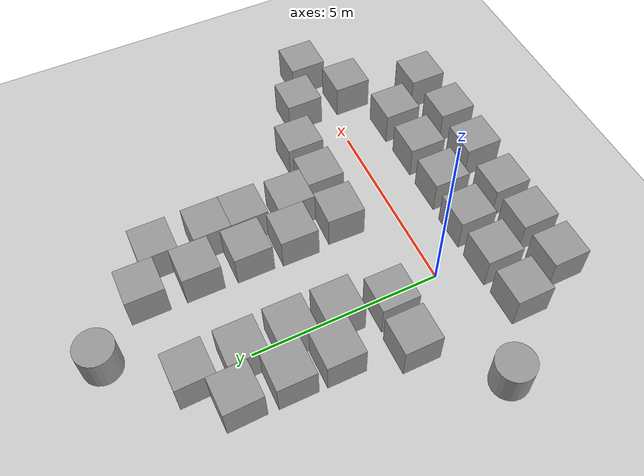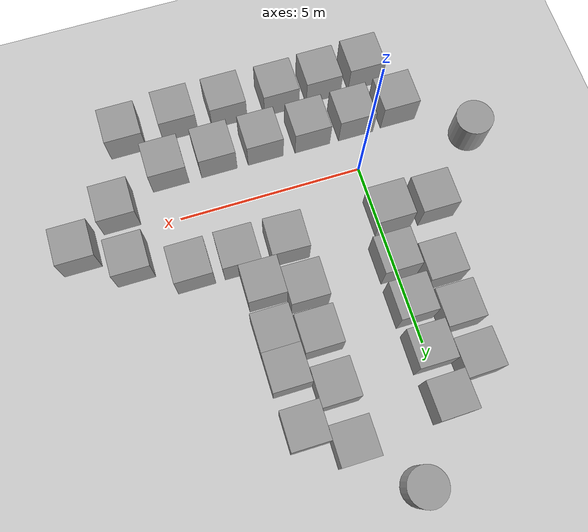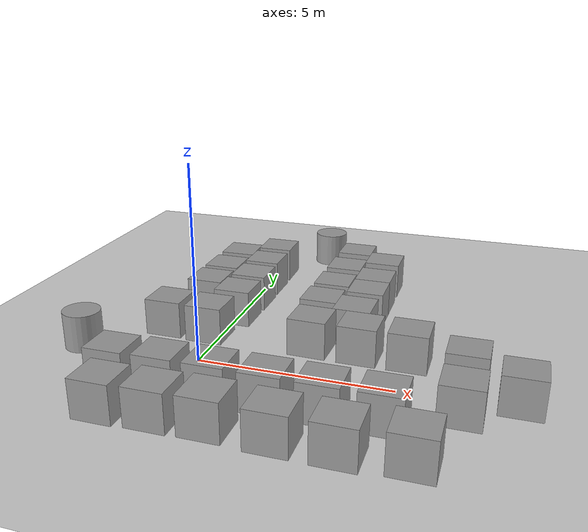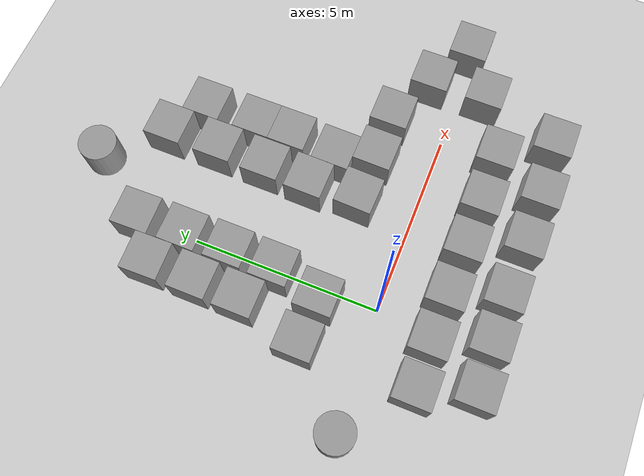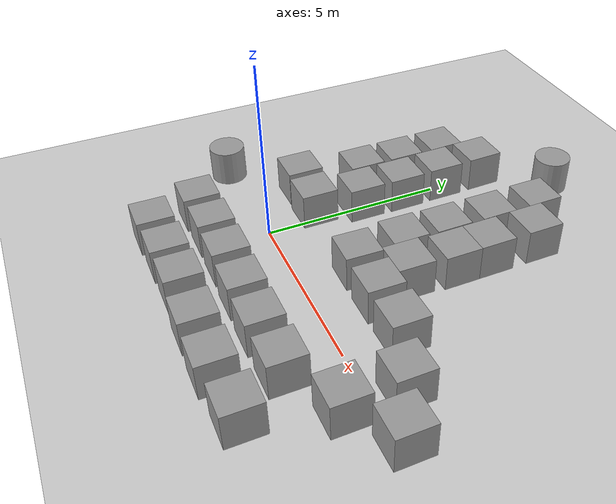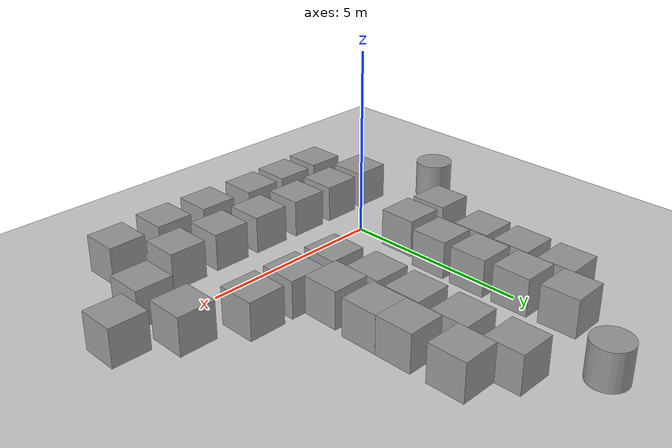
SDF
<sdf version="1.6">
 <world name="default">
  <light name="sun" type="directional">
   <pose>0 0 10 0 -0 0</pose>
   <diffuse>0.8 0.8 0.8 1</diffuse>
   <specular>0.2 0.2 0.2 1</specular>
   <attenuation>
    <range>1000</range>
    <constant>0.9</constant>
    <linear>0.01</linear>
    <quadratic>0.001</quadratic>
   </attenuation>
   <direction>-0.5 0.1 -0.9</direction>
  </light>
  <model name="ground_plane">
   <static>1</static>
   <link name="link">
    <collision name="collision">
     <geometry><plane><normal>0 0 1</normal><size>100 100</size></plane></geometry>
     <surface><friction><ode><mu>100</mu><mu2>50</mu2></ode></friction></surface>
    </collision>
    <visual name="visual">
     <cast_shadows>0</cast_shadows>
     <geometry><plane><normal>0 0 1</normal><size>100 100</size></plane></geometry>
     <material>
      <script><uri>file://media/materials/scripts/gazebo.material</uri><name>Gazebo/Grey</name></script>
     </material>
    </visual>
   </link>
  </model>
  <gravity>0 0 -9.8</gravity>
  <magnetic_field>6e-06 2.3e-05 -4.2e-05</magnetic_field>
  <atmosphere type="adiabatic"/>
  <physics name="default_physics" default="0" type="ode">
   <max_step_size>0.001</max_step_size>
   <real_time_factor>1</real_time_factor>
   <real_time_update_rate>1000</real_time_update_rate>
  </physics>
  <scene><ambient>0.4 0.4 0.4 1</ambient><background>0.7 0.7 0.7 1</background><shadows>1</shadows></scene>
  <spherical_coordinates>
   <surface_model>EARTH_WGS84</surface_model>
   <latitude_deg>0</latitude_deg>
   <longitude_deg>0</longitude_deg>
   <elevation>0</elevation>
   <heading_deg>0</heading_deg>
  </spherical_coordinates>
  <model name="unit_box">
   <pose>-1.48367 -1.50067 0.499995 -1e-05 0 0</pose>
   <link name="link">
    <inertial>
     <mass>1</mass>
     <inertia>
      <ixx>0.166667</ixx>
      <ixy>0</ixy>
      <ixz>0</ixz>
      <iyy>0.166667</iyy>
      <iyz>0</iyz>
      <izz>0.166667</izz>
     </inertia>
    </inertial>
    <collision name="collision"><geometry><box><size>1 1 1</size></box></geometry></collision>
    <visual name="visual">
     <geometry><box><size>1 1 1</size></box></geometry>
     <material>
      <script><name>Gazebo/Grey</name><uri>file://media/materials/scripts/gazebo.material</uri></script>
     </material>
    </visual>
   </link>
  </model>
  <model name="unit_box_0">
   <pose>-1.47702 1.50552 0.499995 0 1e-05 0</pose>
   <link name="link">
    <inertial>
     <mass>1</mass>
     <inertia>
      <ixx>0.166667</ixx>
      <ixy>0</ixy>
      <ixz>0</ixz>
      <iyy>0.166667</iyy>
      <iyz>0</iyz>
      <izz>0.166667</izz>
     </inertia>
    </inertial>
    <collision name="collision"><geometry><box><size>1 1 1</size></box></geometry></collision>
    <visual name="visual">
     <geometry><box><size>1 1 1</size></box></geometry>
     <material>
      <script><name>Gazebo/Grey</name><uri>file://media/materials/scripts/gazebo.material</uri></script>
     </material>
    </visual>
   </link>
  </model>
  <model name="unit_box_1">
   <pose>-0.247239 -1.46383 0.499995 -1e-05 0 0</pose>
   <link name="link">
    <inertial>
     <mass>1</mass>
     <inertia>
      <ixx>0.166667</ixx>
      <ixy>0</ixy>
      <ixz>0</ixz>
      <iyy>0.166667</iyy>
      <iyz>0</iyz>
      <izz>0.166667</izz>
     </inertia>
    </inertial>
    <collision name="collision"><geometry><box><size>1 1 1</size></box></geometry></collision>
    <visual name="visual">
     <geometry><box><size>1 1 1</size></box></geometry>
     <material>
      <script><name>Gazebo/Grey</name><uri>file://media/materials/scripts/gazebo.material</uri></script>
     </material>
    </visual>
   </link>
  </model>
  <model name="unit_box_2">
   <pose>1.01054 -1.46147 0.499995 -1e-05 0 0</pose>
   <link name="link">
    <inertial>
     <mass>1</mass>
     <inertia>
      <ixx>0.166667</ixx>
      <ixy>0</ixy>
      <ixz>0</ixz>
      <iyy>0.166667</iyy>
      <iyz>0</iyz>
      <izz>0.166667</izz>
     </inertia>
    </inertial>
    <collision name="collision"><geometry><box><size>1 1 1</size></box></geometry></collision>
    <visual name="visual">
     <geometry><box><size>1 1 1</size></box></geometry>
     <material>
      <script><name>Gazebo/Grey</name><uri>file://media/materials/scripts/gazebo.material</uri></script>
     </material>
    </visual>
   </link>
  </model>
  <model name="unit_box_2_clone">
   <pose>2.3388 -1.48223 0.499995 1e-05 -0 0</pose>
   <link name="link">
    <inertial>
     <mass>1</mass>
     <inertia>
      <ixx>0.166667</ixx>
      <ixy>0</ixy>
      <ixz>0</ixz>
      <iyy>0.166667</iyy>
      <iyz>0</iyz>
      <izz>0.166667</izz>
     </inertia>
    </inertial>
    <collision name="collision"><geometry><box><size>1 1 1</size></box></geometry></collision>
    <visual name="visual">
     <geometry><box><size>1 1 1</size></box></geometry>
     <material>
      <script><name>Gazebo/Grey</name><uri>file://media/materials/scripts/gazebo.material</uri></script>
     </material>
    </visual>
   </link>
  </model>
  <model name="unit_box_2_clone_0">
   <pose>3.64754 -1.48992 0.499995 -1e-05 0 0</pose>
   <link name="link">
    <inertial>
     <mass>1</mass>
     <inertia>
      <ixx>0.166667</ixx>
      <ixy>0</ixy>
      <ixz>0</ixz>
      <iyy>0.166667</iyy>
      <iyz>0</iyz>
      <izz>0.166667</izz>
     </inertia>
    </inertial>
    <collision name="collision"><geometry><box><size>1 1 1</size></box></geometry></collision>
    <visual name="visual">
     <geometry><box><size>1 1 1</size></box></geometry>
     <material>
      <script><name>Gazebo/Grey</name><uri>file://media/materials/scripts/gazebo.material</uri></script>
     </material>
    </visual>
   </link>
  </model>
  <model name="unit_box_2_clone_1">
   <pose>5.00497 -1.46366 0.499995 0 1e-05 0</pose>
   <link name="link">
    <inertial>
     <mass>1</mass>
     <inertia>
      <ixx>0.166667</ixx>
      <ixy>0</ixy>
      <ixz>0</ixz>
      <iyy>0.166667</iyy>
      <iyz>0</iyz>
      <izz>0.166667</izz>
     </inertia>
    </inertial>
    <collision name="collision"><geometry><box><size>1 1 1</size></box></geometry></collision>
    <visual name="visual">
     <geometry><box><size>1 1 1</size></box></geometry>
     <material>
      <script><name>Gazebo/Grey</name><uri>file://media/materials/scripts/gazebo.material</uri></script>
     </material>
    </visual>
   </link>
  </model>
  <model name="unit_box_2_clone_2">
   <pose>-0.297069 1.45579 0.499995 -1e-05 0 0</pose>
   <link name="link">
    <inertial>
     <mass>1</mass>
     <inertia>
      <ixx>0.166667</ixx>
      <ixy>0</ixy>
      <ixz>0</ixz>
      <iyy>0.166667</iyy>
      <iyz>0</iyz>
      <izz>0.166667</izz>
     </inertia>
    </inertial>
    <collision name="collision"><geometry><box><size>1 1 1</size></box></geometry></collision>
    <visual name="visual">
     <geometry><box><size>1 1 1</size></box></geometry>
     <material>
      <script><name>Gazebo/Grey</name><uri>file://media/materials/scripts/gazebo.material</uri></script>
     </material>
    </visual>
   </link>
  </model>
  <model name="unit_box_2_clone_3">
   <pose>5.06818 1.47757 0.499995 0 1e-05 0</pose>
   <link name="link">
    <inertial>
     <mass>1</mass>
     <inertia>
      <ixx>0.166667</ixx>
      <ixy>0</ixy>
      <ixz>0</ixz>
      <iyy>0.166667</iyy>
      <iyz>0</iyz>
      <izz>0.166667</izz>
     </inertia>
    </inertial>
    <collision name="collision"><geometry><box><size>1 1 1</size></box></geometry></collision>
    <visual name="visual">
     <geometry><box><size>1 1 1</size></box></geometry>
     <material>
      <script><name>Gazebo/Grey</name><uri>file://media/materials/scripts/gazebo.material</uri></script>
     </material>
    </visual>
   </link>
  </model>
  <model name="unit_box_2_clone_4">
   <pose>3.81077 1.47064 0.499995 -1e-05 -0 -0.012881</pose>
   <link name="link">
    <inertial>
     <mass>1</mass>
     <inertia>
      <ixx>0.166667</ixx>
      <ixy>0</ixy>
      <ixz>0</ixz>
      <iyy>0.166667</iyy>
      <iyz>0</iyz>
      <izz>0.166667</izz>
     </inertia>
    </inertial>
    <collision name="collision"><geometry><box><size>1 1 1</size></box></geometry></collision>
    <visual name="visual">
     <geometry><box><size>1 1 1</size></box></geometry>
     <material>
      <script><name>Gazebo/Grey</name><uri>file://media/materials/scripts/gazebo.material</uri></script>
     </material>
    </visual>
   </link>
  </model>
  <model name="unit_box_2_clone_5">
   <pose>2.52523 1.49386 0.499995 -1e-05 -0 -0.030203</pose>
   <link name="link">
    <inertial>
     <mass>1</mass>
     <inertia>
      <ixx>0.166667</ixx>
      <ixy>0</ixy>
      <ixz>0</ixz>
      <iyy>0.166667</iyy>
      <iyz>0</iyz>
      <izz>0.166667</izz>
     </inertia>
    </inertial>
    <collision name="collision"><geometry><box><size>1 1 1</size></box></geometry></collision>
    <visual name="visual">
     <geometry><box><size>1 1 1</size></box></geometry>
     <material>
      <script><name>Gazebo/Grey</name><uri>file://media/materials/scripts/gazebo.material</uri></script>
     </material>
    </visual>
   </link>
  </model>
  <model name="unit_box_2_clone_6">
   <pose>2.44025 2.82885 0.499995 1e-05 -0 -0.012961</pose>
   <link name="link">
    <inertial>
     <mass>1</mass>
     <inertia>
      <ixx>0.166667</ixx>
      <ixy>0</ixy>
      <ixz>0</ixz>
      <iyy>0.166667</iyy>
      <iyz>0</iyz>
      <izz>0.166667</izz>
     </inertia>
    </inertial>
    <collision name="collision"><geometry><box><size>1 1 1</size></box></geometry></collision>
    <visual name="visual">
     <geometry><box><size>1 1 1</size></box></geometry>
     <material>
      <script><name>Gazebo/Grey</name><uri>file://media/materials/scripts/gazebo.material</uri></script>
     </material>
    </visual>
   </link>
  </model>
  <model name="unit_box_2_clone_7">
   <pose>2.47921 4.05577 0.499995 1e-05 -0 0</pose>
   <link name="link">
    <inertial>
     <mass>1</mass>
     <inertia>
      <ixx>0.166667</ixx>
      <ixy>0</ixy>
      <ixz>0</ixz>
      <iyy>0.166667</iyy>
      <iyz>0</iyz>
      <izz>0.166667</izz>
     </inertia>
    </inertial>
    <collision name="collision"><geometry><box><size>1 1 1</size></box></geometry></collision>
    <visual name="visual">
     <geometry><box><size>1 1 1</size></box></geometry>
     <material>
      <script><name>Gazebo/Grey</name><uri>file://media/materials/scripts/gazebo.material</uri></script>
     </material>
    </visual>
   </link>
  </model>
  <model name="unit_box_2_clone_8">
   <pose>2.49584 5.39349 0.499995 0 -1e-05 0.001186</pose>
   <link name="link">
    <inertial>
     <mass>1</mass>
     <inertia>
      <ixx>0.166667</ixx>
      <ixy>0</ixy>
      <ixz>0</ixz>
      <iyy>0.166667</iyy>
      <iyz>0</iyz>
      <izz>0.166667</izz>
     </inertia>
    </inertial>
    <collision name="collision"><geometry><box><size>1 1 1</size></box></geometry></collision>
    <visual name="visual">
     <geometry><box><size>1 1 1</size></box></geometry>
     <material>
      <script><name>Gazebo/Grey</name><uri>file://media/materials/scripts/gazebo.material</uri></script>
     </material>
    </visual>
   </link>
  </model>
  <model name="unit_box_2_clone_9">
   <pose>2.49563 6.80363 0.499995 0 -1e-05 -0.000505</pose>
   <link name="link">
    <inertial>
     <mass>1</mass>
     <inertia>
      <ixx>0.166667</ixx>
      <ixy>0</ixy>
      <ixz>0</ixz>
      <iyy>0.166667</iyy>
      <iyz>0</iyz>
      <izz>0.166667</izz>
     </inertia>
    </inertial>
    <collision name="collision"><geometry><box><size>1 1 1</size></box></geometry></collision>
    <visual name="visual">
     <geometry><box><size>1 1 1</size></box></geometry>
     <material>
      <script><name>Gazebo/Grey</name><uri>file://media/materials/scripts/gazebo.material</uri></script>
     </material>
    </visual>
   </link>
  </model>
  <model name="unit_box_2_clone_10">
   <pose>-0.007824 2.74819 0.499995 -1e-05 0 0</pose>
   <link name="link">
    <inertial>
     <mass>1</mass>
     <inertia>
      <ixx>0.166667</ixx>
      <ixy>0</ixy>
      <ixz>0</ixz>
      <iyy>0.166667</iyy>
      <iyz>0</iyz>
      <izz>0.166667</izz>
     </inertia>
    </inertial>
    <collision name="collision"><geometry><box><size>1 1 1</size></box></geometry></collision>
    <visual name="visual">
     <geometry><box><size>1 1 1</size></box></geometry>
     <material>
      <script><name>Gazebo/Grey</name><uri>file://media/materials/scripts/gazebo.material</uri></script>
     </material>
    </visual>
   </link>
  </model>
  <model name="unit_box_2_clone_11">
   <pose>0.012284 3.9643 0.499995 1e-05 -0 0</pose>
   <link name="link">
    <inertial>
     <mass>1</mass>
     <inertia>
      <ixx>0.166667</ixx>
      <ixy>0</ixy>
      <ixz>0</ixz>
      <iyy>0.166667</iyy>
      <iyz>0</iyz>
      <izz>0.166667</izz>
     </inertia>
    </inertial>
    <collision name="collision"><geometry><box><size>1 1 1</size></box></geometry></collision>
    <visual name="visual">
     <geometry><box><size>1 1 1</size></box></geometry>
     <material>
      <script><name>Gazebo/Grey</name><uri>file://media/materials/scripts/gazebo.material</uri></script>
     </material>
    </visual>
   </link>
  </model>
  <model name="unit_box_2_clone_12">
   <pose>-0.008149 5.20096 0.499995 0 1e-05 -0.001024</pose>
   <link name="link">
    <inertial>
     <mass>1</mass>
     <inertia>
      <ixx>0.166667</ixx>
      <ixy>0</ixy>
      <ixz>0</ixz>
      <iyy>0.166667</iyy>
      <iyz>0</iyz>
      <izz>0.166667</izz>
     </inertia>
    </inertial>
    <collision name="collision"><geometry><box><size>1 1 1</size></box></geometry></collision>
    <visual name="visual">
     <geometry><box><size>1 1 1</size></box></geometry>
     <material>
      <script><name>Gazebo/Grey</name><uri>file://media/materials/scripts/gazebo.material</uri></script>
     </material>
    </visual>
   </link>
  </model>
  <model name="unit_box_2_clone_13">
   <pose>-0.036235 6.47735 0.499995 -1e-05 0 0.022814</pose>
   <link name="link">
    <inertial>
     <mass>1</mass>
     <inertia>
      <ixx>0.166667</ixx>
      <ixy>0</ixy>
      <ixz>0</ixz>
      <iyy>0.166667</iyy>
      <iyz>0</iyz>
      <izz>0.166667</izz>
     </inertia>
    </inertial>
    <collision name="collision"><geometry><box><size>1 1 1</size></box></geometry></collision>
    <visual name="visual">
     <geometry><box><size>1 1 1</size></box></geometry>
     <material>
      <script><name>Gazebo/Grey</name><uri>file://media/materials/scripts/gazebo.material</uri></script>
     </material>
    </visual>
   </link>
  </model>
  <model name="unit_box_2_clone_14">
   <pose>6.5438 -0.6608 0.499995 -1e-05 0 0</pose>
   <link name="link">
    <inertial>
     <mass>1</mass>
     <inertia>
      <ixx>0.166667</ixx>
      <ixy>0</ixy>
      <ixz>0</ixz>
      <iyy>0.166667</iyy>
      <iyz>0</iyz>
      <izz>0.166667</izz>
     </inertia>
    </inertial>
    <collision name="collision"><geometry><box><size>1 1 1</size></box></geometry></collision>
    <visual name="visual">
     <geometry><box><size>1 1 1</size></box></geometry>
     <material>
      <script><name>Gazebo/Grey</name><uri>file://media/materials/scripts/gazebo.material</uri></script>
     </material>
    </visual>
   </link>
  </model>
  <model name="unit_box_2_clone_15">
   <pose>6.51483 0.850691 0.499995 1e-05 -0 0</pose>
   <link name="link">
    <inertial>
     <mass>1</mass>
     <inertia>
      <ixx>0.166667</ixx>
      <ixy>0</ixy>
      <ixz>0</ixz>
      <iyy>0.166667</iyy>
      <iyz>0</iyz>
      <izz>0.166667</izz>
     </inertia>
    </inertial>
    <collision name="collision"><geometry><box><size>1 1 1</size></box></geometry></collision>
    <visual name="visual">
     <geometry><box><size>1 1 1</size></box></geometry>
     <material>
      <script><name>Gazebo/Grey</name><uri>file://media/materials/scripts/gazebo.material</uri></script>
     </material>
    </visual>
   </link>
  </model>
  <model name="unit_box_2_clone_16">
   <pose>7.78047 0.173193 0.499995 -1e-05 0 0</pose>
   <link name="link">
    <inertial>
     <mass>1</mass>
     <inertia>
      <ixx>0.166667</ixx>
      <ixy>0</ixy>
      <ixz>0</ixz>
      <iyy>0.166667</iyy>
      <iyz>0</iyz>
      <izz>0.166667</izz>
     </inertia>
    </inertial>
    <collision name="collision"><geometry><box><size>1 1 1</size></box></geometry></collision>
    <visual name="visual">
     <geometry><box><size>1 1 1</size></box></geometry>
     <material>
      <script><name>Gazebo/Grey</name><uri>file://media/materials/scripts/gazebo.material</uri></script>
     </material>
    </visual>
   </link>
  </model>
  <model name="unit_box_2_clone_17">
   <pose>5.86121 -2.74353 0.499995 0 1e-05 0</pose>
   <link name="link">
    <inertial>
     <mass>1</mass>
     <inertia>
      <ixx>0.166667</ixx>
      <ixy>0</ixy>
      <ixz>0</ixz>
      <iyy>0.166667</iyy>
      <iyz>0</iyz>
      <izz>0.166667</izz>
     </inertia>
    </inertial>
    <collision name="collision"><geometry><box><size>1 1 1</size></box></geometry></collision>
    <visual name="visual">
     <geometry><box><size>1 1 1</size></box></geometry>
     <material>
      <script><name>Gazebo/Grey</name><uri>file://media/materials/scripts/gazebo.material</uri></script>
     </material>
    </visual>
   </link>
  </model>
  <model name="unit_box_2_clone_18">
   <pose>4.37606 -2.84977 0.499995 -1e-05 0 0</pose>
   <link name="link">
    <inertial>
     <mass>1</mass>
     <inertia>
      <ixx>0.166667</ixx>
      <ixy>0</ixy>
      <ixz>0</ixz>
      <iyy>0.166667</iyy>
      <iyz>0</iyz>
      <izz>0.166667</izz>
     </inertia>
    </inertial>
    <collision name="collision"><geometry><box><size>1 1 1</size></box></geometry></collision>
    <visual name="visual">
     <geometry><box><size>1 1 1</size></box></geometry>
     <material>
      <script><name>Gazebo/Grey</name><uri>file://media/materials/scripts/gazebo.material</uri></script>
     </material>
    </visual>
   </link>
  </model>
  <model name="unit_box_2_clone_19">
   <pose>2.97526 -2.8386 0.499995 1e-05 -0 0</pose>
   <link name="link">
    <inertial>
     <mass>1</mass>
     <inertia>
      <ixx>0.166667</ixx>
      <ixy>0</ixy>
      <ixz>0</ixz>
      <iyy>0.166667</iyy>
      <iyz>0</iyz>
      <izz>0.166667</izz>
     </inertia>
    </inertial>
    <collision name="collision"><geometry><box><size>1 1 1</size></box></geometry></collision>
    <visual name="visual">
     <geometry><box><size>1 1 1</size></box></geometry>
     <material>
      <script><name>Gazebo/Grey</name><uri>file://media/materials/scripts/gazebo.material</uri></script>
     </material>
    </visual>
   </link>
  </model>
  <model name="unit_box_2_clone_20">
   <pose>1.49015 -2.7843 0.499995 -1e-05 0 0</pose>
   <link name="link">
    <inertial>
     <mass>1</mass>
     <inertia>
      <ixx>0.166667</ixx>
      <ixy>0</ixy>
      <ixz>0</ixz>
      <iyy>0.166667</iyy>
      <iyz>0</iyz>
      <izz>0.166667</izz>
     </inertia>
    </inertial>
    <collision name="collision"><geometry><box><size>1 1 1</size></box></geometry></collision>
    <visual name="visual">
     <geometry><box><size>1 1 1</size></box></geometry>
     <material>
      <script><name>Gazebo/Grey</name><uri>file://media/materials/scripts/gazebo.material</uri></script>
     </material>
    </visual>
   </link>
  </model>
  <model name="unit_box_2_clone_21">
   <pose>0.25891 -2.81907 0.499995 0 1e-05 0</pose>
   <link name="link">
    <inertial>
     <mass>1</mass>
     <inertia>
      <ixx>0.166667</ixx>
      <ixy>0</ixy>
      <ixz>0</ixz>
      <iyy>0.166667</iyy>
      <iyz>0</iyz>
      <izz>0.166667</izz>
     </inertia>
    </inertial>
    <collision name="collision"><geometry><box><size>1 1 1</size></box></geometry></collision>
    <visual name="visual">
     <geometry><box><size>1 1 1</size></box></geometry>
     <material>
      <script><name>Gazebo/Grey</name><uri>file://media/materials/scripts/gazebo.material</uri></script>
     </material>
    </visual>
   </link>
  </model>
  <model name="unit_box_2_clone_22">
   <pose>-0.99363 -2.86985 0.499995 -1e-05 0 0</pose>
   <link name="link">
    <inertial>
     <mass>1</mass>
     <inertia>
      <ixx>0.166667</ixx>
      <ixy>0</ixy>
      <ixz>0</ixz>
      <iyy>0.166667</iyy>
      <iyz>0</iyz>
      <izz>0.166667</izz>
     </inertia>
    </inertial>
    <collision name="collision"><geometry><box><size>1 1 1</size></box></geometry></collision>
    <visual name="visual">
     <geometry><box><size>1 1 1</size></box></geometry>
     <material>
      <script><name>Gazebo/Grey</name><uri>file://media/materials/scripts/gazebo.material</uri></script>
     </material>
    </visual>
   </link>
  </model>
  <model name="unit_box_2_clone_23">
   <pose>3.43581 2.47567 0.499995 -0 -1e-05 -0.012924</pose>
   <link name="link">
    <inertial>
     <mass>1</mass>
     <inertia>
      <ixx>0.166667</ixx>
      <ixy>0</ixy>
      <ixz>0</ixz>
      <iyy>0.166667</iyy>
      <iyz>0</iyz>
      <izz>0.166667</izz>
     </inertia>
    </inertial>
    <collision name="collision"><geometry><box><size>1 1 1</size></box></geometry></collision>
    <visual name="visual">
     <geometry><box><size>1 1 1</size></box></geometry>
     <material>
      <script><name>Gazebo/Grey</name><uri>file://media/materials/scripts/gazebo.material</uri></script>
     </material>
    </visual>
   </link>
  </model>
  <model name="unit_box_2_clone_24">
   <pose>3.50652 3.73485 0.499995 -1e-05 -0 -2.2e-05</pose>
   <link name="link">
    <inertial>
     <mass>1</mass>
     <inertia>
      <ixx>0.166667</ixx>
      <ixy>0</ixy>
      <ixz>0</ixz>
      <iyy>0.166667</iyy>
      <iyz>0</iyz>
      <izz>0.166667</izz>
     </inertia>
    </inertial>
    <collision name="collision"><geometry><box><size>1 1 1</size></box></geometry></collision>
    <visual name="visual">
     <geometry><box><size>1 1 1</size></box></geometry>
     <material>
      <script><name>Gazebo/Grey</name><uri>file://media/materials/scripts/gazebo.material</uri></script>
     </material>
    </visual>
   </link>
  </model>
  <model name="unit_box_2_clone_25">
   <pose>3.50524 4.73485 0.5 0 0 -2.4e-05</pose>
   <link name="link">
    <inertial>
     <mass>1</mass>
     <inertia>
      <ixx>0.166667</ixx>
      <ixy>0</ixy>
      <ixz>0</ixz>
      <iyy>0.166667</iyy>
      <iyz>0</iyz>
      <izz>0.166667</izz>
     </inertia>
    </inertial>
    <collision name="collision"><geometry><box><size>1 1 1</size></box></geometry></collision>
    <visual name="visual">
     <geometry><box><size>1 1 1</size></box></geometry>
     <material>
      <script><name>Gazebo/Grey</name><uri>file://media/materials/scripts/gazebo.material</uri></script>
     </material>
    </visual>
   </link>
  </model>
  <model name="unit_box_2_clone_26">
   <pose>3.49557 6.14678 0.499995 -1e-05 -0 -1.6e-05</pose>
   <link name="link">
    <inertial>
     <mass>1</mass>
     <inertia>
      <ixx>0.166667</ixx>
      <ixy>0</ixy>
      <ixz>0</ixz>
      <iyy>0.166667</iyy>
      <iyz>0</iyz>
      <izz>0.166667</izz>
     </inertia>
    </inertial>
    <collision name="collision"><geometry><box><size>1 1 1</size></box></geometry></collision>
    <visual name="visual">
     <geometry><box><size>1 1 1</size></box></geometry>
     <material>
      <script><name>Gazebo/Grey</name><uri>file://media/materials/scripts/gazebo.material</uri></script>
     </material>
    </visual>
   </link>
  </model>
  <model name="unit_box_2_clone_27">
   <pose>-1.01962 5.72544 0.499995 0 -1e-05 0.022826</pose>
   <link name="link">
    <inertial>
     <mass>1</mass>
     <inertia>
      <ixx>0.166667</ixx>
      <ixy>0</ixy>
      <ixz>0</ixz>
      <iyy>0.166667</iyy>
      <iyz>0</iyz>
      <izz>0.166667</izz>
     </inertia>
    </inertial>
    <collision name="collision"><geometry><box><size>1 1 1</size></box></geometry></collision>
    <visual name="visual">
     <geometry><box><size>1 1 1</size></box></geometry>
     <material>
      <script><name>Gazebo/Grey</name><uri>file://media/materials/scripts/gazebo.material</uri></script>
     </material>
    </visual>
   </link>
  </model>
  <model name="unit_box_2_clone_28">
   <pose>-1.023 4.45035 0.499995 -1e-05 0 0</pose>
   <link name="link">
    <inertial>
     <mass>1</mass>
     <inertia>
      <ixx>0.166667</ixx>
      <ixy>0</ixy>
      <ixz>0</ixz>
      <iyy>0.166667</iyy>
      <iyz>0</iyz>
      <izz>0.166667</izz>
     </inertia>
    </inertial>
    <collision name="collision"><geometry><box><size>1 1 1</size></box></geometry></collision>
    <visual name="visual">
     <geometry><box><size>1 1 1</size></box></geometry>
     <material>
      <script><name>Gazebo/Grey</name><uri>file://media/materials/scripts/gazebo.material</uri></script>
     </material>
    </visual>
   </link>
  </model>
  <model name="unit_box_2_clone_29">
   <pose>-1.033 3.23792 0.499995 1e-05 -0 0</pose>
   <link name="link">
    <inertial>
     <mass>1</mass>
     <inertia>
      <ixx>0.166667</ixx>
      <ixy>0</ixy>
      <ixz>0</ixz>
      <iyy>0.166667</iyy>
      <iyz>0</iyz>
      <izz>0.166667</izz>
     </inertia>
    </inertial>
    <collision name="collision"><geometry><box><size>1 1 1</size></box></geometry></collision>
    <visual name="visual">
     <geometry><box><size>1 1 1</size></box></geometry>
     <material>
      <script><name>Gazebo/Grey</name><uri>file://media/materials/scripts/gazebo.material</uri></script>
     </material>
    </visual>
   </link>
  </model>
  <model name="unit_cylinder">
   <pose>1.25234 8.2446 0.499993 -3e-06 -4e-06 -0</pose>
   <link name="link">
    <inertial>
     <mass>1</mass>
     <inertia><ixx>0.145833</ixx><ixy>0</ixy><ixz>0</ixz><iyy>0.145833</iyy><iyz>0</iyz><izz>0.125</izz></inertia>
    </inertial>
    <collision name="collision">
     <geometry><cylinder><radius>0.5</radius><length>1</length></cylinder></geometry>
    </collision>
    <visual name="visual">
     <geometry><cylinder><radius>0.5</radius><length>1</length></cylinder></geometry>
     <material>
      <script><name>Gazebo/Grey</name><uri>file://media/materials/scripts/gazebo.material</uri></script>
     </material>
    </visual>
   </link>
  </model>
  <model name="unit_cylinder_0">
   <pose>-3.19258 -0.12879 0.499997 3e-06 4e-06 -0</pose>
   <link name="link">
    <inertial>
     <mass>1</mass>
     <inertia><ixx>0.145833</ixx><ixy>0</ixy><ixz>0</ixz><iyy>0.145833</iyy><iyz>0</iyz><izz>0.125</izz></inertia>
    </inertial>
    <collision name="collision">
     <geometry><cylinder><radius>0.5</radius><length>1</length></cylinder></geometry>
    </collision>
    <visual name="visual">
     <geometry><cylinder><radius>0.5</radius><length>1</length></cylinder></geometry>
     <material>
      <script><name>Gazebo/Grey</name><uri>file://media/materials/scripts/gazebo.material</uri></script>
     </material>
    </visual>
   </link>
  </model>
  <light name="user_directional_light_0" type="directional">
   <pose>-5.34156 99.0881 1 0 -0 0</pose>
   <diffuse>0.5 0.5 0.5 1</diffuse>
   <specular>0.1 0.1 0.1 1</specular>
   <direction>0.1 0.1 -0.9</direction>
   <attenuation>
    <range>20</range>
    <constant>0.5</constant>
    <linear>0.01</linear>
    <quadratic>0.001</quadratic>
   </attenuation>
  </light>
 </world>
</sdf>
